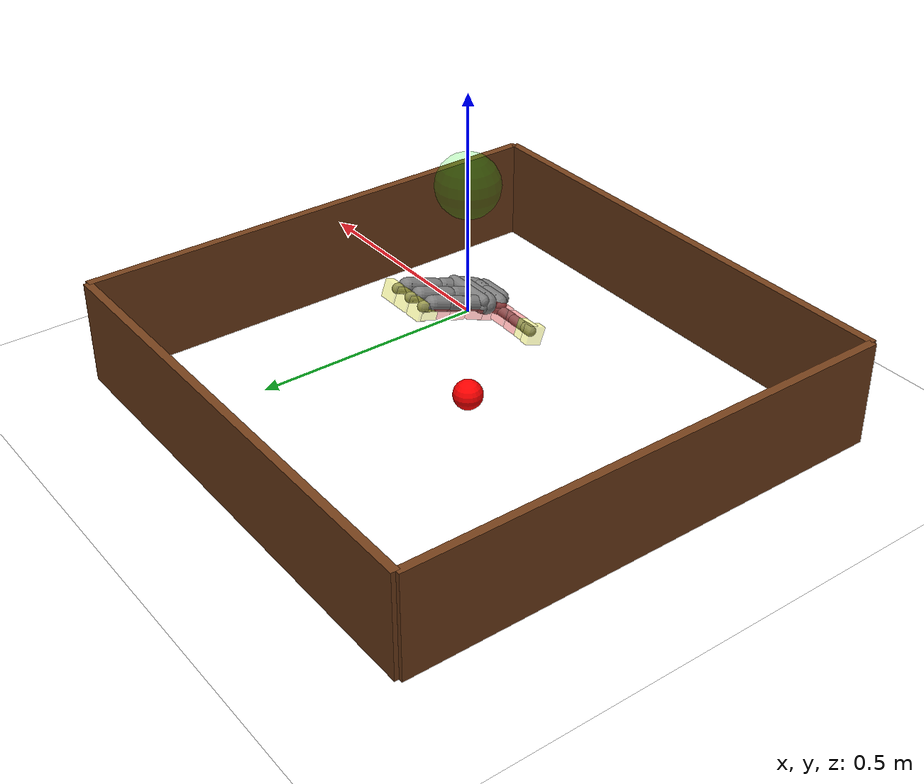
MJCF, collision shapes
<mujoco model="relocate_scene">
  <option>
    <flag gravity="enable"/>
  </option>
  <include file="relocate_leap_touch.xml"/>
  <include file="relocate.xml"/>

  <statistic center="0.15 0 0" extent="0.4" meansize="0.01"/>

  <visual>
    <headlight diffuse=".8 .8 .8" ambient=".2 .2 .2" specular="1 1 1"/>
    <rgba force="1 0 0 1"/>
    <global azimuth="120" elevation="-20"/>
    <map force="0.01" stiffness="500"/>
    <scale forcewidth="0.1" contactwidth="0.5" contactheight="0.2"/>
    <quality shadowsize="8192"/>
  </visual>

  <asset>
    <texture type="skybox" builtin="gradient" rgb1="1 1 1" rgb2="1 1 1" width="800" height="800"/>
    <texture type="2d" name="groundplane" builtin="checker" mark="edge" rgb1="1 1 1" rgb2="1 1 1" markrgb="0 0 0"
      width="300" height="300"/>
    <material name="groundplane" texture="groundplane" texuniform="true" texrepeat="5 5" reflectance="0"/>
  </asset>

  <worldbody>
    <camera name="fixed" pos="0 0 2.0" quat="1 0 0 0" />
    <camera name="vil_camera" pos="0 -1.2 1.2" quat="0.92388 0.382683 0 0" />
    <geom name="floor" pos="0 0 -0.25" size="0 0 0.01" type="plane" material="groundplane" contype="1" conaffinity="1"/>
  </worldbody>

  <sensor>
    <!-- cube. -->
    <framepos name="cube_position" objtype="body" objname="cube"/>
    <framequat name="cube_orientation" objtype="body" objname="cube"/>
    <framelinvel name="cube_linvel" objtype="body" objname="cube"/>
    <frameangvel name="cube_angvel" objtype="body" objname="cube"/>
    <frameangacc name="cube_angacc" objtype="body" objname="cube"/>
    <framezaxis name="cube_upvector" objtype="body" objname="cube"/>

    <!-- hand. -->
    <framepos name="palm_position" objtype="site" objname="grasp_site"/>
    <framepos name="th_tip_position" objtype="site" objname="th_tip" reftype="site" refname="grasp_site"/>
    <framepos name="if_tip_position" objtype="site" objname="if_tip" reftype="site" refname="grasp_site"/>
    <framepos name="mf_tip_position" objtype="site" objname="mf_tip" reftype="site" refname="grasp_site"/>
    <framepos name="rf_tip_position" objtype="site" objname="rf_tip" reftype="site" refname="grasp_site"/>

  </sensor>

  <keyframe>
    <key name="home"
      qpos="
      0.0 0.0 0.0 0.0 0.0 0.0
      0.8 0 0.8 0.8
      0.8 0 0.8 0.8
      0.8 0 0.8 0.8
      0.8 0.8 0.8 0
      0.11 0.0 0.1 1.0 0.0 0.0 0.0"
      ctrl="
      0.0 0.0 0.0 0.0 0.0 0.0
      0.8 0 0.8 0.8
      0.8 0 0.8 0.8
      0.8 0 0.8 0.8
      0.8 0.8 0.8 0"/>
  </keyframe>
</mujoco>

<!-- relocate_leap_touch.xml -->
<mujoco model="leap_rh">
  <compiler angle="radian" autolimits="true"/>

  <option timestep="0.01" integrator="Euler" iterations="5" ls_iterations="8">
    <flag eulerdamp="disable"/>
  </option>

  <custom>
    <numeric data="30" name="max_contact_points"/>
    <numeric data="12" name="max_geom_pairs"/>
  </custom>

  <asset>
    <material name="black" rgba="0.2 0.2 0.2 1"/>
    <material name="gray" rgba="0.5 0.5 0.5 1"/>
    <mesh name="leap_mount" file="meshes/leap_mount.obj"/>

    <mesh name="palm" file="../../../../external_deps/mujoco_menagerie/leap_hand/assets/palm_right.obj"/>
    <mesh name="base" file="../../../../external_deps/mujoco_menagerie/leap_hand/assets/base.obj"/>
    <mesh name="proximal" file="../../../../external_deps/mujoco_menagerie/leap_hand/assets/proximal.obj"/>
    <mesh name="medial" file="../../../../external_deps/mujoco_menagerie/leap_hand/assets/medial.obj"/>
    <mesh name="distal" file="../../../../external_deps/mujoco_menagerie/leap_hand/assets/distal.obj"/>
    <mesh name="tip" file="../../../../external_deps/mujoco_menagerie/leap_hand/assets/tip.obj"/>
    <mesh name="thumb_base" file="../../../../external_deps/mujoco_menagerie/leap_hand/assets/thumb_base.obj"/>
    <mesh name="thumb_proximal" file="../../../../external_deps/mujoco_menagerie/leap_hand/assets/thumb_proximal.obj"/>
    <mesh name="thumb_distal" file="../../../../external_deps/mujoco_menagerie/leap_hand/assets/thumb_distal.obj"/>
    <mesh name="thumb_tip" file="../../../../external_deps/mujoco_menagerie/leap_hand/assets/thumb_tip.obj"/>
  </asset>

  <default>
    <default class="leap_rh">
      <geom group="3" friction="0.2" solref="0.02 1.5" solimp="0.9 0.99 0.001"/>
      <default class="visual">
        <geom group="2" type="mesh" contype="0" conaffinity="0" density="0" material="black"/>
      </default>
      <default class="tip">
        <geom type="capsule" size="0.012 0.008" pos="0 -0.03 0.015" quat="1 1 0 0" friction="0.7 0.05 0.0002"/>
      </default>
      <default class="thumb_tip">
        <geom type="capsule" size="0.012 0.008" pos="0.0 -0.04 -0.015" quat="1 1 0 0" friction="0.7 0.05 0.0002"/>
      </default>

      <position kp="3.0" inheritrange="1"/>
      <!-- armature = rotor inertia * gear ratio^2 = 1.7 * 1e-8 * 288*288 = 0.00149376 -->
      <!-- max torque = 0.2196 = 600/1000*0.366 -->
      <!-- frictionloss = rough guess, small ish value -->
      <joint axis="0 0 -1" damping="0.1" armature="0.001" actuatorfrcrange="-8.0 8.0" frictionloss="0.02"/>

      <default class="mcp">
        <joint range="-0.314 2.23"/>
      </default>
      <default class="rot">
        <joint range="-1.047 1.047"/>
      </default>
      <default class="pip">
        <joint range="-0.506 1.885"/>
      </default>
      <default class="dip">
        <joint range="-0.366 2.042"/>
      </default>
      <default class="thumb_cmc">
        <joint range="-0.349 2.094"/>
      </default>
      <default class="thumb_axl">
        <joint range="-0.349 2.094"/>
      </default>
      <default class="thumb_mcp">
        <joint range="-0.47 2.443"/>
      </default>
      <default class="thumb_ipl">
        <joint range="-1.34 1.88"/>
      </default>

    </default>
  </default>

  <contact>
    <!-- filter the palm from all other finger bodies except the tips -->
    <exclude body1="palm" body2="if_bs"/>
    <exclude body1="palm" body2="mf_bs"/>
    <exclude body1="palm" body2="rf_bs"/>
    <exclude body1="palm" body2="th_mp"/>

    <exclude body1="palm" body2="if_px"/>
    <exclude body1="palm" body2="mf_px"/>
    <exclude body1="palm" body2="rf_px"/>
    <exclude body1="palm" body2="th_bs"/>

    <exclude body1="palm" body2="if_md"/>
    <exclude body1="palm" body2="mf_md"/>
    <exclude body1="palm" body2="rf_md"/>
    <exclude body1="palm" body2="th_px"/>

    <!-- filter the mount from all finger bodies except the tips -->
    <exclude body1="leap_mount" body2="if_bs"/>
    <exclude body1="leap_mount" body2="mf_bs"/>
    <exclude body1="leap_mount" body2="rf_bs"/>
    <exclude body1="leap_mount" body2="th_mp"/>

    <exclude body1="leap_mount" body2="if_px"/>
    <exclude body1="leap_mount" body2="mf_px"/>
    <exclude body1="leap_mount" body2="rf_px"/>
    <exclude body1="leap_mount" body2="th_bs"/>

    <exclude body1="leap_mount" body2="if_md"/>
    <exclude body1="leap_mount" body2="mf_md"/>
    <exclude body1="leap_mount" body2="rf_md"/>
    <exclude body1="leap_mount" body2="th_px"/>

    <!-- none of the base fingertip geoms can touch each other -->
    <exclude body1="if_bs" body2="mf_bs"/>
    <exclude body1="if_bs" body2="rf_bs"/>
    <exclude body1="mf_bs" body2="rf_bs"/>

    <exclude body1="th_mp" body2="if_bs"/>
    <exclude body1="th_mp" body2="mf_bs"/>
    <exclude body1="th_mp" body2="rf_bs"/>

    <!-- New exclusions to deal with capsule shapes -->
    <exclude body1="th_px" body2="th_mp"/>
  </contact>

  <worldbody>
    <light name="spotlight" mode="targetbodycom" target="palm" pos="3 0 4"/>
    <body name="leap_mount" pos="0 -0.1 0" quat="0 0.707 0.707 0" childclass="leap_rh">
      <joint name="H_Tx" pos="0 0 0" axis="1 0 0" type="slide" range="-0.6 0.6" damping="5" armature="0.1" actuatorfrcrange="-100.0 100.0"/>
      <joint name="H_Ty" pos="0 0 0" axis="0 1 0" type="slide" range="-0.6 0.6" damping="5" armature="0.1" actuatorfrcrange="-100.0 100.0"/>
      <joint name="H_Tz" pos="0 0 0" axis="0 0 1" type="slide" range="-0.3 0.4" damping="5" armature="0.1" actuatorfrcrange="-100.0 100.0"/>
      <joint name="H_Rx" pos="0 0 0" axis="1 0 0" range="-2 2" damping="8" armature="0.2" actuatorfrcrange="-100.0 100.0"/>
      <joint name="H_Ry" pos="0 0 0" axis="0 1 0" range="-2 2" damping="8" armature="0.2" actuatorfrcrange="-100.0 100.0"/>
      <joint name="H_Rz" pos="0 0 0" axis="0 0 1" range="-2 2" damping="8" armature="0.2" actuatorfrcrange="-100.0 100.0"/>
      <geom name="leap_mount_visual" pos="0 0 0" quat="1 0 0 0" class="visual" mesh="leap_mount"/>
      <geom name="leap_mount_collision_0" size="0.017 0.02" pos="0.0405 0.02 -0.01" quat="0.405499 0.405499 0.579284 -0.579284" type="capsule"/>

      <site name="grasp_site" pos="0.11 0.0 0.03" group="4"/>
      <site name="palm_site" pos="0.11 0.0 0.0" group="4"/>
      <body name="palm" pos="0.124 -0.0305 -0.06045" quat="0 1 0 -0.175">
        <inertial pos="-0.049542 -0.042914 -0.010227" quat="0.565586 0.427629 -0.574956 0.408254" mass="0.237"
          diaginertia="0.000407345 0.000304759 0.000180736"/>
        <site name="palm_touch_center" type="box" pos="-0.05 -0.04 -0.036" size="0.02 0.02 0.01" quat="1 0 0 0" rgba="1 0 0 0.33"/>
        <site name="palm_touch_right" type="box" pos="-0.05 0 -0.036" size="0.02 0.02 0.01" quat="1 0 0 0" rgba="1 0 0 0.33"/>
        <site name="palm_touch_left" type="box" pos="-0.05 -0.08 -0.036" size="0.02 0.02 0.01" quat="1 0 0 0" rgba="1 0 0 0.33"/>
        <site name="palm_touch_back" type="box" pos="-0.09 -0.04 -0.036" size="0.02 0.02 0.01" quat="1 0 0 0" rgba="1 0 0 0.33"/>
        <site name="palm_touch_back_left" type="box" pos="-0.085 -0.07 -0.036" size="0.02 0.02 0.01" quat="1 0 0 0" rgba="1 0 0 0.33"/>
        <geom name="palm_visual" pos="-0.02 0.02575 -0.0347" quat="1 0 0 0" class="visual" mesh="palm"/>
        <site name="palm_touch_if" type="box" size="0.02 0.02 0.01" pos="-0.009 0.009 -0.029"  rgba="1 0 0 0.33"/>

        <site name="palm_touch_mf" type="box" size="0.02 0.02 0.01" pos="-0.009 -0.036 -0.029" rgba="1 0 0 0.33"/>

        <site name="palm_touch_rf" type="box" size="0.02 0.02 0.01" pos="-0.009 -0.081 -0.029" rgba="1 0 0 0.33"/>
        <geom name="palm_collision_1" size="0.0175 0.013" pos="-0.009 0.008 -0.011" quat="0.7071068 0 0.7071068 0" type="capsule"/>
        <geom name="palm_collision_2" size="0.0175 0.013" pos="-0.009 -0.037 -0.011" quat="0.7071068 0 0.7071068 0" type="capsule"/>
        <geom name="palm_collision_3" size="0.0175 0.013" pos="-0.009 -0.082 -0.011" quat="0.7071068 0 0.7071068 0" type="capsule"/>
        <geom name="palm_collision_4" size="0.025 0.016" pos="-0.066 -0.07 -0.0115" quat="0.699000 -0.106000 -0.699000 -0.106000" type="capsule"/>
        <geom name="palm_collision_5" size="0.015 0.05" pos="-0.03 -0.035 -0.003" quat="1 1 -1 1" type="capsule"/>
        <geom name="palm_collision_6" size="0.015 0.05" pos="-0.032 -0.035 -0.016" quat="1 1 -1 1" type="capsule"/>
        <geom name="palm_collision_7" size="0.025 0.040" pos="-0.048 -0.033 -0.0115" quat="1 1 -1 1" type="capsule"/>
        <geom name="palm_collision_8" size="0.025 0.008" pos="-0.078 -0.053 -0.0115" quat="1 1 -1 1" type="capsule"/>
        <geom name="palm_collision_9" size="0.02 0.028" pos="-0.098 -0.034 -0.006" quat="1 1 -1 1" type="capsule"/>
        <geom name="palm_collision_10" size="0.02 0.02" pos="-0.078 -0.008 -0.007" quat="1 1 -1 1" type="capsule"/>

        <body name="if_bs" pos="-0.007 0.023 -0.0187" quat="0.5 0.5 0.5 -0.5">
          <inertial pos="-0.022516 0.033882 0.016359" quat="0.388092 0.677951 -0.247713 0.573067" mass="0.044"
            diaginertia="1.74972e-05 1.61504e-05 7.21342e-06"/>
          <joint name="if_mcp" class="mcp"/>
          <geom name="if_bs_visual" pos="0.0084 0.0077 0.01465" quat="1 0 0 0" class="visual" mesh="base"/>
          <body name="if_px" pos="-0.0122 0.0381 0.0145" quat="0.500003 -0.5 -0.499997 0.5">
            <inertial pos="0.0075 -0.0002 -0.011" quat="0 0.707107 0 0.707107" mass="0.032"
              diaginertia="4.8853e-06 4.3733e-06 3.0933e-06"/>
            <joint name="if_rot" class="rot"/>
            <geom name="if_px_visual" pos="0.0096 0.0002 0.0007" quat="0.500003 -0.5 -0.5 -0.499997" class="visual"
              mesh="proximal"/>
            <geom name="if_px_collision" size="0.0175 0.017" pos="0.0075 -0.0002 -0.006" quat="0 0.7071068 0 0.7071068" type="capsule"/>
            <site name="if_px_touch" type="box" size="0.02 0.02 0.01" pos="0.0075 -0.0002 -0.024" rgba="1 0 0 0.33"/>

            <body name="if_md" pos="0.015 0.0143 -0.013" quat="0.500003 0.5 -0.5 0.499997">
              <inertial pos="0.0054215 -0.029148 0.015" quat="0.687228 0.687228 0.166487 0.166487" mass="0.037"
                diaginertia="8.28004e-06 8.1598e-06 5.39516e-06"/>
              <joint name="if_pip" class="pip"/>
              <geom name="if_md_visual" pos="0.0211 -0.0084 0.0097" quat="2.67949e-08 -1 0 0" class="visual"
                mesh="medial"/>
              <geom name="if_md_collision_5" size="0.0175 0.017" pos="0.0075 -0.035 0.015" quat="0.7071068 0.7071068 0 0" type="capsule"/>
              <site name="if_md_touch" type="box" pos="-0.01 -0.035 0.015" size="0.02 0.02 0.01" quat="0.7071068 0 0.7071068 0" rgba="1 0 0 0.33"/>
              <body name="if_ds" pos="0 -0.0361 0.0002">
                <inertial pos="-0.0008794 -0.027019 0.014594" quat="0.702905 0.710643 -0.0212937 -0.0214203"
                  mass="0.016" diaginertia="3.71863e-06 3.02396e-06 1.6518e-06"/>
                <joint name="if_dip" class="dip"/>
                <geom name="if_ds_visual" pos="0.0132 -0.0061 0.0144" quat="2.67949e-08 1 0 0" class="visual"
                  mesh="distal"/>
                <geom name="if_tip" class="tip"/>
                <geom type="mesh" mesh="tip" class="visual" material="gray"/>
                <site name="if_tip" pos="0 -0.05 0.015" group="4" />
                <site name="if_tip_touch" type="box" pos="-0.012 -0.033 0.014" size="0.02 0.02 0.01" quat="0.7071068 0 0.7071068 0" rgba="1 1 0 0.33"/>
                <site name="if_front_touch" type="box" pos="-0.005 -0.05 0.014" size="0.02 0.02 0.01" quat="0.7071068 0.7071068 0 0" rgba="1 1 0 0.33"/>
              </body>
            </body>
          </body>
        </body>
        <body name="mf_bs" pos="-0.0071 -0.0224 -0.0187" quat="0.500003 0.5 0.5 -0.499997">
          <inertial pos="-0.022516 0.033882 0.016359" quat="0.388092 0.677951 -0.247713 0.573067" mass="0.044"
            diaginertia="1.74972e-05 1.61504e-05 7.21342e-06"/>
          <joint name="mf_mcp" class="mcp"/>
          <geom name="mf_bs_visual" pos="0.0084 0.0077 0.01465" quat="1 0 0 0" class="visual" mesh="base"/>
          <body name="mf_px" pos="-0.0122 0.0381 0.0145" quat="0.500003 -0.5 -0.499997 0.5">
            <inertial pos="0.0075 -0.0002 -0.011" quat="0 0.707107 0 0.707107" mass="0.032"
              diaginertia="4.8853e-06 4.3733e-06 3.0933e-06"/>
            <joint name="mf_rot" class="rot"/>
            <geom name="mf_px_visual" pos="0.0096 0.0003 0.0007" quat="0.500003 -0.5 -0.5 -0.499997" class="visual"
              mesh="proximal"/>
            <geom name="mf_px_collision" size="0.0175 0.017" pos="0.0075 -0.0002 -0.006" quat="0 0.7071068 0 0.7071068" type="capsule"/>
            <site name="mf_px_touch" type="box" size="0.02 0.02 0.01" pos="0.0075 -0.0002 -0.024" rgba="1 0 0 0.33"/>
            <body name="mf_md" pos="0.015 0.0143 -0.013" quat="0.500003 0.5 -0.5 0.499997">
              <inertial pos="0.0054215 -0.029148 0.015" quat="0.687228 0.687228 0.166487 0.166487" mass="0.037"
                diaginertia="8.28004e-06 8.1598e-06 5.39516e-06"/>
              <joint name="mf_pip" class="pip"/>
              <geom name="mf_md_visual" pos="0.0211 -0.0084 0.0097" quat="1.32679e-06 -1 0 0" class="visual"
                mesh="medial"/>
              <geom name="mf_md_collision_5" size="0.0175 0.017" pos="0.0075 -0.035 0.015" quat="0.7071068 0.7071068 0 0" type="capsule"/>
              <site name="mf_md_touch" type="box" pos="-0.01 -0.035 0.015" size="0.02 0.02 0.01" quat="0.7071068 0 0.7071068 0" rgba="1 0 0 0.33"/>
              <body name="mf_ds" pos="0 -0.0361 0.0002">
                <inertial pos="-0.0008794 -0.027019 0.014594" quat="0.702905 0.710643 -0.0212937 -0.0214203"
                  mass="0.016" diaginertia="3.71863e-06 3.02396e-06 1.6518e-06"/>
                <joint name="mf_dip" class="dip"/>
                <geom name="mf_ds_visual" pos="0.0132 -0.0061 0.0145" quat="1.32679e-06 1 0 0" class="visual"
                  mesh="distal"/>
                <geom name="mf_tip" class="tip"/>
                <geom type="mesh" mesh="tip" class="visual" material="gray"/>
                <site name="mf_tip" pos="0 -0.05 0.015" group="4"/>
                <site name="mf_tip_touch" type="box" pos="-0.012 -0.033 0.014" size="0.02 0.02 0.01" quat="0.7071068 0 0.7071068 0" rgba="1 1 0 0.33"/>
                <site name="mf_front_touch" type="box" pos="-0.005 -0.05 0.014" size="0.02 0.02 0.01" quat="0.7071068 0.7071068 0 0" rgba="1 1 0 0.33"/>
              </body>
            </body>
          </body>
        </body>
        <body name="rf_bs" pos="-0.00709 -0.0678 -0.0187" quat="0.500003 0.5 0.5 -0.499997">
          <inertial pos="-0.022516 0.033882 0.016359" quat="0.388092 0.677951 -0.247713 0.573067" mass="0.044"
            diaginertia="1.74972e-05 1.61504e-05 7.21342e-06"/>
          <joint name="rf_mcp" class="mcp"/>
          <geom name="rf_bs_visual" pos="0.0084 0.0077 0.01465" quat="1 0 0 0" class="visual" mesh="base"/>
          <body name="rf_px" pos="-0.0122 0.0381 0.0145" quat="0.500003 -0.5 -0.499997 0.5">
            <inertial pos="0.0075 -0.0002 -0.011" quat="0 0.707107 0 0.707107" mass="0.032"
              diaginertia="4.8853e-06 4.3733e-06 3.0933e-06"/>
            <joint name="rf_rot" class="rot"/>
            <geom name="rf_px_visual" pos="0.0096 0.0003 0.0007" quat="0.500003 -0.5 -0.5 -0.499997" class="visual"
              mesh="proximal"/>
            <geom name="rf_px_collision" size="0.0175 0.017" pos="0.0075 -0.0002 -0.006" quat="0 0.7071068 0 0.7071068" type="capsule"/>
            <site name="rf_px_touch" type="box" size="0.02 0.02 0.01" pos="0.0075 -0.0002 -0.024" rgba="1 0 0 0.33"/>
            <body name="rf_md" pos="0.015 0.0143 -0.013" quat="0.500003 0.5 -0.5 0.499997">
              <inertial pos="0.0054215 -0.029148 0.015" quat="0.687228 0.687228 0.166487 0.166487" mass="0.037"
                diaginertia="8.28004e-06 8.1598e-06 5.39516e-06"/>
              <joint name="rf_pip" class="pip"/>
              <geom name="rf_md_visual" pos="0.0211 -0.0084 0.0097" quat="0 -1 0 0" class="visual" mesh="medial"/>
              <geom name="rf_md_collision_5" size="0.0175 0.017" pos="0.0075 -0.035 0.015" quat="0.7071068 0.7071068 0 0" type="capsule"/>
              <site name="rf_md_touch" type="box" pos="-0.01 -0.035 0.015" size="0.02 0.02 0.01" quat="0.7071068 0 0.7071068 0" rgba="1 0 0 0.33"/>
              <body name="rf_ds" pos="0 -0.03609 0.0002">
                <inertial pos="-0.0008794 -0.027019 0.014594" quat="0.702905 0.710643 -0.0212937 -0.0214203"
                  mass="0.016" diaginertia="3.71863e-06 3.02396e-06 1.6518e-06"/>
                <joint name="rf_dip" class="dip"/>
                <geom name="rf_ds_visual" pos="0.0132 -0.0061 0.0145" quat="0 1 0 0" class="visual" mesh="distal"/>
                <geom name="rf_tip" class="tip"/>
                <geom type="mesh" mesh="tip" class="visual" material="gray"/>
                <site name="rf_tip" pos="0 -0.05 0.015" group="4"/>
                <site name="rf_tip_touch" type="box" pos="-0.012 -0.033 0.014" size="0.02 0.02 0.01" quat="0.7071068 0 0.7071068 0" rgba="1 1 0 0.33"/>
                <site name="rf_front_touch" type="box" pos="-0.005 -0.05 0.014" size="0.02 0.02 0.01" quat="0.7071068 0.7071068 0 0" rgba="1 1 0 0.33"/>
              </body>
            </body>
          </body>
        </body>
        <body name="th_mp" pos="-0.0693 -0.0012 -0.0216" quat="0.707109 0 0.707105 0">
          <inertial pos="0.0075 -0.0002 -0.011" quat="0 0.707107 0 0.707107" mass="0.032"
            diaginertia="4.8853e-06 4.3733e-06 3.0933e-06"/>
          <joint name="th_cmc" class="thumb_cmc"/>
          <geom name="th_mp_visual" pos="-0.0053 0.0003 0.00078" quat="0.500003 -0.5 -0.5 -0.499997" class="visual"
            mesh="proximal"/>
          <geom name="th_mp_collision" size="0.02 0.013" pos="-0.0075 -0.0002 -0.011" quat="1 1 -1 1" type="capsule"/>
          <body name="th_bs" pos="0 0.0143 -0.013" quat="0.500003 0.5 -0.5 0.499997">
            <inertial pos="0 0 -0.0070806" quat="0.707107 0.707107 0 0" mass="0.003"
              diaginertia="6.1932e-07 5.351e-07 2.1516e-07"/>
            <joint name="th_axl" class="thumb_axl"/>
            <geom name="th_bs_collision_1" pos="0.01196 0 -0.0158" quat="0.707109 0.707105 0 0" class="visual" mesh="thumb_base"/>
            <body name="th_px" pos="0 0.0145 -0.017" quat="0.707109 -0.707105 0 0">
              <inertial pos="-0.0020593 0.015912 -0.013733" quat="0.698518 0.697382 -0.104933 0.121324" mass="0.038"
                diaginertia="9.87104e-06 9.32653e-06 4.36203e-06"/>
              <joint name="th_mcp" class="thumb_mcp"/>
              <geom name="th_px_visual" pos="0.0439 0.0579 -0.0086" quat="1 0 0 0" class="visual" mesh="thumb_proximal"/>
              <geom name="th_px_collision_1" size="0.011 0.02" pos="0 0.0105 -0.014" quat="0.7071068 0.7071068 0 0" type="capsule"/>
              <site name="th_px_touch" type="box" size="0.02 0.02 0.01" pos="0.01 0.0105 -0.014" quat="0.7071068 0 0.7071068 0" rgba="1 0 0 0.33"/>
              <body name="th_ds" pos="0 0.0466 0.0002" quat="1.32679e-06 0 0 1">
                <inertial pos="0.00096191 -0.024203 -0.014419" quat="0.35287 0.311272 -0.632839 0.614904" mass="0.049"
                  diaginertia="2.08591e-05 2.0402e-05 4.71335e-06"/>
                <joint name="th_ipl" class="thumb_ipl"/>
                <geom name="th_ds_visual" pos="0.0625 0.0784 0.0489" quat="1 0 0 0" class="visual" mesh="thumb_distal"/>
                <geom name="th_ds_collision_1" size="0.011 0.018" pos="0 -0.0085 -0.015" quat="0.7071068 0.7071068 0 0" type="capsule"/>
                <site name="th_ds_touch" type="box" size="0.02 0.02 0.01" pos="-0.01 -0.0085 -0.015" quat="0.7071068 0 0.7071068 0" rgba="1 0 0 0.33"/>
                <geom name="th_tip" class="thumb_tip"/>
                <site name="th_tip" pos="0 -0.06 -0.015" group="4"/>
                <site name="th_tip_touch" type="box" pos="-0.012 -0.047 -0.015" size="0.02 0.02 0.01" quat="0.7071068 0 0.7071068 0" rgba="1 1 0 0.33"/>
                <site name="th_front_touch" type="box" pos="-0.005 -0.062 -0.016" size="0.02 0.02 0.01" quat="0.7071068 0.7071068 0 0" rgba="1 1 0 0.33"/>
                <geom type="mesh" mesh="thumb_tip" class="visual" material="gray"/>
              </body>
            </body>
          </body>
        </body>
      </body>
    </body>
  </worldbody>

  <actuator>
    <position name="A_H_Tx" joint="H_Tx" ctrllimited="true" ctrlrange="-0.6 0.6"  kp="300" kv="30"/>
    <position name="A_H_Ty" joint="H_Ty" ctrllimited="true" ctrlrange="-0.6 0.6" kp="300" kv="30"/>
    <position name="A_H_Tz" joint="H_Tz" ctrllimited="true" ctrlrange="-0.6 0.6" kp="300" kv="30"/>
    <position name="A_H_Rx" joint="H_Rx" ctrllimited="true" ctrlrange="-2 2" kp="120" kv="12"/>
    <position name="A_H_Ry" joint="H_Ry" ctrllimited="true" ctrlrange="-2 2" kp="120" kv="12"/>
    <position name="A_H_Rz" joint="H_Tz" ctrllimited="true" ctrlrange="-2 2" kp="120" kv="12"/>
    <position name="if_mcp_act" joint="if_mcp" class="mcp"/>
    <position name="if_rot_act" joint="if_rot" class="rot"/>
    <position name="if_pip_act" joint="if_pip" class="pip"/>
    <position name="if_dip_act" joint="if_dip" class="dip"/>
    <position name="mf_mcp_act" joint="mf_mcp" class="mcp"/>
    <position name="mf_rot_act" joint="mf_rot" class="rot"/>
    <position name="mf_pip_act" joint="mf_pip" class="pip"/>
    <position name="mf_dip_act" joint="mf_dip" class="dip"/>
    <position name="rf_mcp_act" joint="rf_mcp" class="mcp"/>
    <position name="rf_rot_act" joint="rf_rot" class="rot"/>
    <position name="rf_pip_act" joint="rf_pip" class="pip"/>
    <position name="rf_dip_act" joint="rf_dip" class="dip"/>
    <position name="th_cmc_act" joint="th_cmc" class="thumb_cmc"/>
    <position name="th_axl_act" joint="th_axl" class="thumb_axl"/>
    <position name="th_mcp_act" joint="th_mcp" class="thumb_mcp"/>
    <position name="th_ipl_act" joint="th_ipl" class="thumb_ipl"/>
  </actuator>
  <sensor>
    <touch name="palm_touch_center" site="palm_touch_center"/>
    <touch name="palm_touch_right" site="palm_touch_right"/>
    <touch name="palm_touch_left" site="palm_touch_left"/>
    <touch name="palm_touch_back" site="palm_touch_back"/>
    <touch name="palm_touch_back_left" site="palm_touch_back_left"/>

    <touch name="palm_touch_if" site="palm_touch_if"/>
    <touch name="palm_touch_mf" site="palm_touch_mf"/>
    <touch name="palm_touch_rf" site="palm_touch_rf"/>

    <touch name="if_px_touch" site="if_px_touch"/>
    <touch name="if_md_touch" site="if_md_touch"/>
    <touch name="if_tip_touch" site="if_tip_touch"/>
    <touch name="mf_px_touch" site="mf_px_touch"/>
    <touch name="mf_md_touch" site="mf_md_touch"/>
    <touch name="mf_tip_touch" site="mf_tip_touch"/>
    <touch name="rf_px_touch" site="rf_px_touch"/>
    <touch name="rf_md_touch" site="rf_md_touch"/>
    <touch name="rf_tip_touch" site="rf_tip_touch"/>
    <touch name="th_px_touch" site="th_px_touch"/>
    <touch name="th_ds_touch" site="th_ds_touch"/>
    <touch name="th_tip_touch" site="th_tip_touch"/>
    <touch name="if_front_touch" site="if_front_touch"/>
    <touch name="mf_front_touch" site="mf_front_touch"/>
    <touch name="rf_front_touch" site="rf_front_touch"/>
    <touch name="th_front_touch" site="th_front_touch"/>
  </sensor>
</mujoco>

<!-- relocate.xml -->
<mujoco>
  <default>
    <default class="cube">
      <geom friction=".3 0.05" conaffinity="2" condim="3"/>
    </default>
  </default>

  <asset>
    <texture name="cube" type="cube" fileup="reorientation_cube_textures/fileup.png"
      fileback="reorientation_cube_textures/fileback.png" filedown="reorientation_cube_textures/filedown.png"
      filefront="reorientation_cube_textures/filefront.png" fileleft="reorientation_cube_textures/fileleft.png"
      fileright="reorientation_cube_textures/fileright.png"/>
    <material name="cube" texture="cube"/>
    <texture name="graycube" type="cube" fileup="reorientation_cube_textures/grayup.png"
      fileback="reorientation_cube_textures/grayback.png" filedown="reorientation_cube_textures/graydown.png"
      filefront="reorientation_cube_textures/grayfront.png" fileleft="reorientation_cube_textures/grayleft.png"
      fileright="reorientation_cube_textures/grayright.png"/>
    <material name="graycube" texture="graycube"/>
    <texture name="woodb" file="resources/textures/woodb.png" />
    <material name="MatWoodB" texture="woodb" specular="1" shininess="0.3" rgba="0.65 0.5 0.35 1"/>
    <texture name="dexcube" type="2d" file="reorientation_cube_textures/dex_cube.png"/>
    <material name="dexcube" texture="dexcube"/>
    <mesh name="cube_mesh" file="meshes/dex_cube.obj" scale="0.035 0.035 0.035"/>
  </asset>

  <worldbody>
    <body name="cube" pos="0 0 -0.215" quat="1 0 0 0" childclass="cube">
      <freejoint name="cube_freejoint"/>
      <!-- Visual geometry - visible -->
      <!-- Collision geometry - invisible but handles physics -->
      <geom name="cube_collision" type="sphere" size=".035" mass=".108" group="1" rgba="1 0 0 0"/>
      <site name="cube_center" pos="0 0 0" group="4"/>
    </body>

    <!-- Walls to contain the cube -->
    <!-- North wall -->
    <geom name="wall_north" type="box" size="0.6 0.01 0.125" pos="0 0.6 -0.125" material="MatWoodB" contype="1" conaffinity="1"/>
    <!-- South wall -->
    <geom name="wall_south" type="box" size="0.6 0.01 0.125" pos="0 -0.6 -0.125" material="MatWoodB" contype="1" conaffinity="1"/>
    <!-- East wall -->
    <geom name="wall_east" type="box" size="0.01 0.6 0.125" pos="0.6 0 -0.125" material="MatWoodB" contype="1" conaffinity="1"/>
    <!-- West wall -->
    <geom name="wall_west" type="box" size="0.01 0.6 0.125" pos="-0.6 0 -0.125" material="MatWoodB" contype="1" conaffinity="1"/>

    <!-- Target site -->
    <site name="target" pos="0 0 0.3" size="0.07" rgba="0 1 0 0.125"/>
  </worldbody>
</mujoco>
